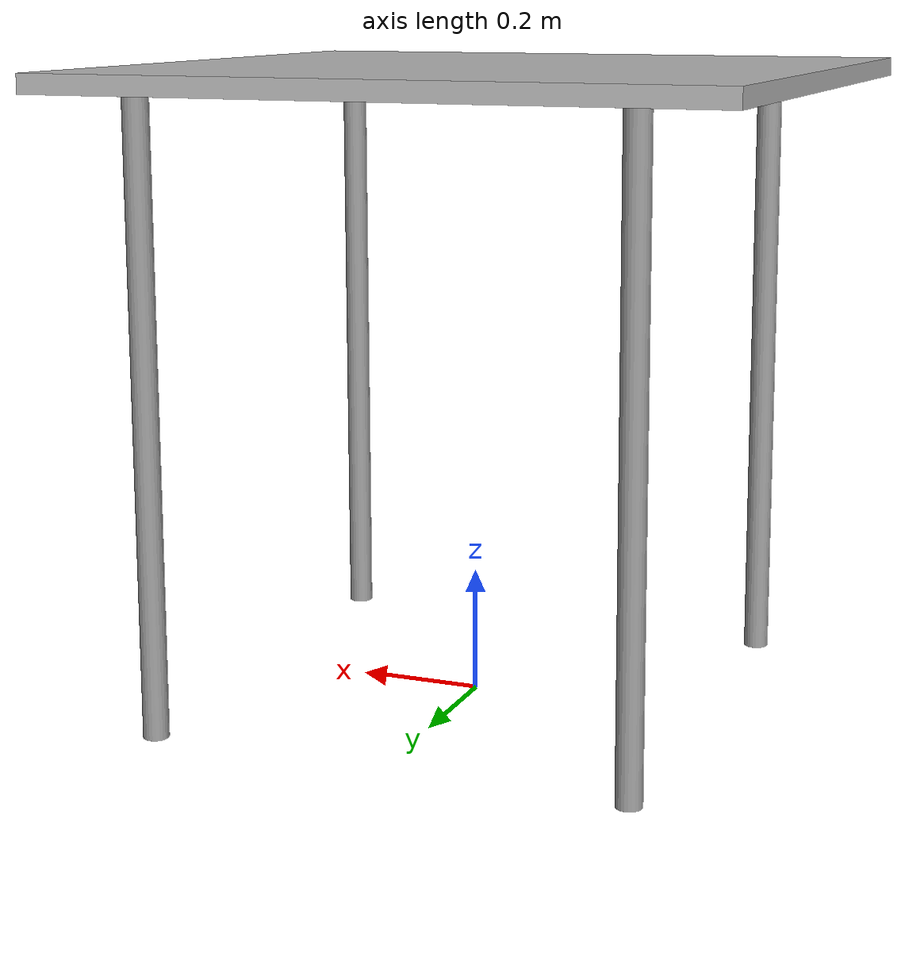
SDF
<?xml version="1.0" ?>
<sdf version="1.5">
  <model name="platform_tile">
    <static>true</static>
    <link name="link">
      <collision name="surface">
        <pose>-0.025 -0.025 1.0 0 0 0</pose>
        <geometry>
          <box>
            <size>1.05 1.05 0.03</size>
          </box>
        </geometry>
        <surface>
          <friction>
            <ode>
              <mu>0.6</mu>
              <mu2>0.6</mu2>
            </ode>
          </friction>
        </surface>
      </collision>
      <visual name="surface">
        <pose>-0.025 -0.025 1.0 0 0 0</pose>
        <geometry>
          <box>
            <size>1.05 1.05 0.03</size>
          </box>
        </geometry>
        <material>
          <script>
            <uri>model://platform_tile/materials/scripts</uri>
            <uri>model://platform_tile/materials/textures</uri>
            <name>platform_tile/Diffuse</name>
          </script>
        </material>
      </visual>
      <collision name="front_left_leg">
        <pose>0.38 0.38 0.5 0 0 0</pose>
        <geometry>
          <cylinder>
            <radius>0.02</radius>
            <length>1.0</length>
          </cylinder>
        </geometry>
      </collision>
      <visual name="front_left_leg">
        <pose>0.38 0.38 0.5 0 0 0</pose>
        <geometry>
          <cylinder>
            <radius>0.02</radius>
            <length>1.0</length>
          </cylinder>
        </geometry>
        <material>
          <script>
            <uri>file://media/materials/scripts/gazebo.material</uri>
            <name>Gazebo/Grey</name>
          </script>
        </material>
      </visual>
      <collision name="front_right_leg">
        <pose>0.38 -0.38 0.5 0 0 0</pose>
        <geometry>
          <cylinder>
            <radius>0.02</radius>
            <length>1.0</length>
          </cylinder>
        </geometry>
      </collision>
      <visual name="front_right_leg">
        <pose>0.38 -0.38 0.5 0 0 0</pose>
        <geometry>
          <cylinder>
            <radius>0.02</radius>
            <length>1.0</length>
          </cylinder>
        </geometry>
        <material>
          <script>
            <uri>file://media/materials/scripts/gazebo.material</uri>
            <name>Gazebo/Grey</name>
          </script>
        </material>
      </visual>
      <collision name="back_right_leg">
        <pose>-0.38 -0.38 0.5 0 0 0</pose>
        <geometry>
          <cylinder>
            <radius>0.02</radius>
            <length>1.0</length>
          </cylinder>
        </geometry>
      </collision>
      <visual name="back_right_leg">
        <pose>-0.38 -0.38 0.5 0 0 0</pose>
        <geometry>
          <cylinder>
            <radius>0.02</radius>
            <length>1.0</length>
          </cylinder>
        </geometry>
        <material>
          <script>
            <uri>file://media/materials/scripts/gazebo.material</uri>
            <name>Gazebo/Grey</name>
          </script>
        </material>
      </visual>
      <collision name="back_left_leg">
        <pose>-0.38 0.38 0.5 0 0 0</pose>
        <geometry>
          <cylinder>
            <radius>0.02</radius>
            <length>1.0</length>
          </cylinder>
        </geometry>
      </collision>
      <visual name="back_left_leg">
        <pose>-0.38 0.38 0.5 0 0 0</pose>
        <geometry>
          <cylinder>
            <radius>0.02</radius>
            <length>1.0</length>
          </cylinder>
        </geometry>
        <material>
          <script>
            <uri>file://media/materials/scripts/gazebo.material</uri>
            <name>Gazebo/Grey</name>
          </script>
        </material>
      </visual>
    </link>
  </model>
</sdf>
